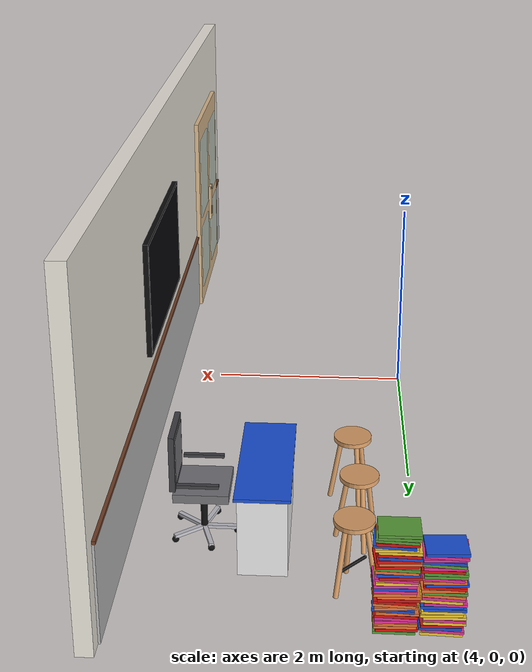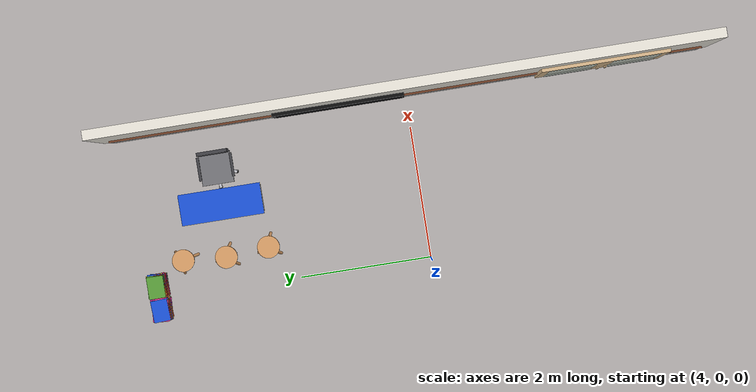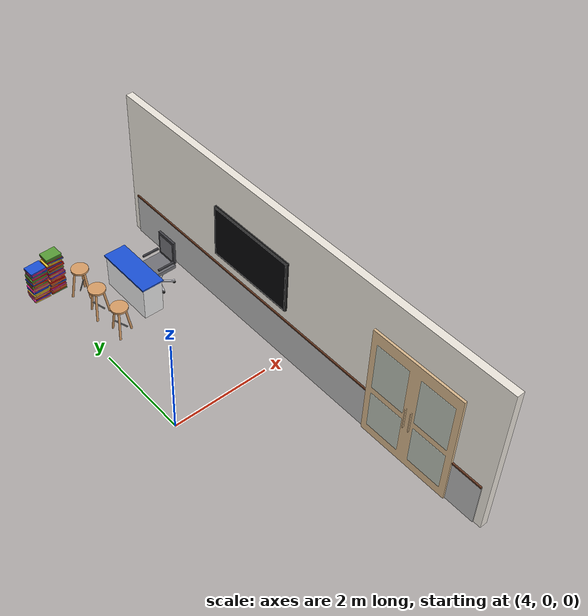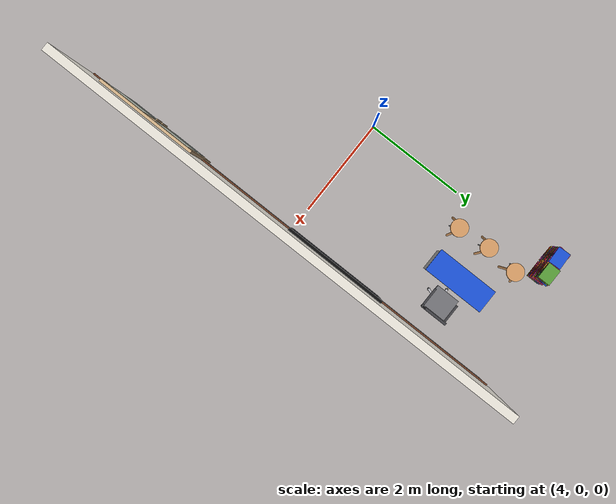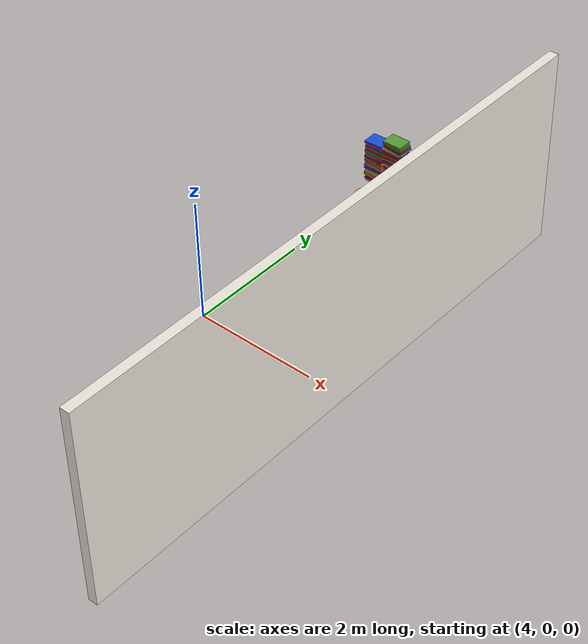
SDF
<sdf version="1.6">
 <world name="mahadev_lab">
  <include><uri>model://sun</uri></include>
  <model name="wall_front_tv">
   <static>true</static>
   <pose>6.5750 0.0000 0.0000 0.0000 0.0000 0.0000</pose>
   <link name="link">
    <visual name="v1">
     <pose>0.0000 0.0000 1.6000 0.0000 0.0000 0.0000</pose>
     <geometry><box><size>0.15 9.3 3.2</size></box></geometry>
     <material>
      <ambient>0.93 0.91 0.87 1</ambient>
      <diffuse>0.93 0.91 0.87 1</diffuse>
      <specular>0.1 0.1 0.1 1</specular>
     </material>
    </visual>
    <collision name="c1">
     <pose>0.0000 0.0000 1.6000 0.0000 0.0000 0.0000</pose>
     <geometry><box><size>0.15 9.3 3.2</size></box></geometry>
     <surface><friction><ode><mu>100</mu><mu2>100</mu2></ode></friction></surface>
    </collision>
    <visual name="v2">
     <pose>-0.0850 0.0000 0.4500 0.0000 0.0000 0.0000</pose>
     <geometry><box><size>0.02 9 0.9</size></box></geometry>
     <material>
      <script>
       <uri>model://mahadev_lab_media/materials/scripts</uri>
       <uri>model://mahadev_lab_media/materials/textures</uri>
       <name>Mahadev/wall_slats_15_1</name>
      </script>
     </material>
    </visual>
    <visual name="v3">
     <pose>-0.0850 0.0000 0.9150 0.0000 0.0000 0.0000</pose>
     <geometry><box><size>0.04 9 0.03</size></box></geometry>
     <material>
      <ambient>0.45 0.25 0.15 1</ambient>
      <diffuse>0.45 0.25 0.15 1</diffuse>
      <specular>0.1 0.1 0.1 1</specular>
     </material>
    </visual>
    <visual name="v4">
     <pose>-0.1150 1.0000 1.7500 0.0000 0.0000 0.0000</pose>
     <geometry><box><size>0.05 1.95 1.12</size></box></geometry>
     <material>
      <ambient>0.05 0.05 0.05 1</ambient>
      <diffuse>0.05 0.05 0.05 1</diffuse>
      <specular>0.1 0.1 0.1 1</specular>
     </material>
    </visual>
    <visual name="v5">
     <pose>-0.1410 1.0000 1.7500 0.0000 0.0000 0.0000</pose>
     <geometry><box><size>0.002 1.89 1.06</size></box></geometry>
     <material>
      <ambient>0.02 0.02 0.03 1</ambient>
      <diffuse>0.02 0.02 0.03 1</diffuse>
      <specular>0.1 0.1 0.1 1</specular>
     </material>
    </visual>
    <visual name="v6">
     <pose>-0.1050 -2.9500 1.2000 0.0000 0.0000 0.0000</pose>
     <geometry><box><size>0.05 1.9 2.4</size></box></geometry>
     <material>
      <ambient>0.85 0.72 0.55 1</ambient>
      <diffuse>0.85 0.72 0.55 1</diffuse>
      <specular>0.1 0.1 0.1 1</specular>
     </material>
    </visual>
    <visual name="v7">
     <pose>-0.1350 -3.4250 1.6500 0.0000 0.0000 0.0000</pose>
     <geometry><box><size>0.01 0.7 1</size></box></geometry>
     <material>
      <ambient>0.75 0.85 0.85 1</ambient>
      <diffuse>0.75 0.85 0.85 1</diffuse>
      <specular>0.1 0.1 0.1 1</specular>
     </material>
     <transparency>0.3</transparency>
    </visual>
    <visual name="v8">
     <pose>-0.1350 -3.4250 0.6000 0.0000 0.0000 0.0000</pose>
     <geometry><box><size>0.01 0.7 0.8</size></box></geometry>
     <material>
      <ambient>0.75 0.85 0.85 1</ambient>
      <diffuse>0.75 0.85 0.85 1</diffuse>
      <specular>0.1 0.1 0.1 1</specular>
     </material>
     <transparency>0.3</transparency>
    </visual>
    <visual name="v9">
     <pose>-0.1550 -3.0100 1.1000 0.0000 0.0000 0.0000</pose>
     <geometry><box><size>0.03 0.02 0.45</size></box></geometry>
     <material>
      <ambient>0.85 0.72 0.55 1</ambient>
      <diffuse>0.85 0.72 0.55 1</diffuse>
      <specular>0.1 0.1 0.1 1</specular>
     </material>
    </visual>
    <visual name="v10">
     <pose>-0.1350 -2.4750 1.6500 0.0000 0.0000 0.0000</pose>
     <geometry><box><size>0.01 0.7 1</size></box></geometry>
     <material>
      <ambient>0.75 0.85 0.85 1</ambient>
      <diffuse>0.75 0.85 0.85 1</diffuse>
      <specular>0.1 0.1 0.1 1</specular>
     </material>
     <transparency>0.3</transparency>
    </visual>
    <visual name="v11">
     <pose>-0.1350 -2.4750 0.6000 0.0000 0.0000 0.0000</pose>
     <geometry><box><size>0.01 0.7 0.8</size></box></geometry>
     <material>
      <ambient>0.75 0.85 0.85 1</ambient>
      <diffuse>0.75 0.85 0.85 1</diffuse>
      <specular>0.1 0.1 0.1 1</specular>
     </material>
     <transparency>0.3</transparency>
    </visual>
    <visual name="v12">
     <pose>-0.1550 -2.8900 1.1000 0.0000 0.0000 0.0000</pose>
     <geometry><box><size>0.03 0.02 0.45</size></box></geometry>
     <material>
      <ambient>0.85 0.72 0.55 1</ambient>
      <diffuse>0.85 0.72 0.55 1</diffuse>
      <specular>0.1 0.1 0.1 1</specular>
     </material>
    </visual>
   </link>
  </model>
  <model name="file_stacks">
   <static>true</static>
   <pose>4.0500 4.1500 0.0000 0.0000 0.0000 0.0000</pose>
   <link name="link">
    <visual name="v1">
     <pose>-0.1755 0.0000 0.0200 0.0000 0.0000 -0.0331</pose>
     <geometry><box><size>0.33 0.25 0.024</size></box></geometry>
     <material>
      <ambient>0.95 0.8 0.2 1</ambient>
      <diffuse>0.95 0.8 0.2 1</diffuse>
      <specular>0.1 0.1 0.1 1</specular>
     </material>
    </visual>
    <visual name="v2">
     <pose>-0.1889 0.0000 0.0450 0.0000 0.0000 -0.0652</pose>
     <geometry><box><size>0.33 0.25 0.024</size></box></geometry>
     <material>
      <ambient>0.9 0.2 0.6 1</ambient>
      <diffuse>0.9 0.2 0.6 1</diffuse>
      <specular>0.1 0.1 0.1 1</specular>
     </material>
    </visual>
    <visual name="v3">
     <pose>-0.1603 0.0000 0.0700 0.0000 0.0000 0.0145</pose>
     <geometry><box><size>0.33 0.25 0.024</size></box></geometry>
     <material>
      <ambient>0.1 0.32 0.85 1</ambient>
      <diffuse>0.1 0.32 0.85 1</diffuse>
      <specular>0.1 0.1 0.1 1</specular>
     </material>
    </visual>
    <visual name="v4">
     <pose>-0.1683 0.0000 0.0950 0.0000 0.0000 0.0658</pose>
     <geometry><box><size>0.33 0.25 0.024</size></box></geometry>
     <material>
      <ambient>0.85 0.08 0.06 1</ambient>
      <diffuse>0.85 0.08 0.06 1</diffuse>
      <specular>0.1 0.1 0.1 1</specular>
     </material>
    </visual>
    <visual name="v5">
     <pose>-0.1938 0.0000 0.1200 0.0000 0.0000 0.0016</pose>
     <geometry><box><size>0.33 0.25 0.024</size></box></geometry>
     <material>
      <ambient>0.95 0.8 0.2 1</ambient>
      <diffuse>0.95 0.8 0.2 1</diffuse>
      <specular>0.1 0.1 0.1 1</specular>
     </material>
    </visual>
    <visual name="v6">
     <pose>-0.1950 0.0000 0.1450 0.0000 0.0000 -0.0218</pose>
     <geometry><box><size>0.33 0.25 0.024</size></box></geometry>
     <material>
      <ambient>0.9 0.2 0.6 1</ambient>
      <diffuse>0.9 0.2 0.6 1</diffuse>
      <specular>0.1 0.1 0.1 1</specular>
     </material>
    </visual>
    <visual name="v7">
     <pose>-0.1895 0.0000 0.1700 0.0000 0.0000 0.0359</pose>
     <geometry><box><size>0.33 0.25 0.024</size></box></geometry>
     <material>
      <ambient>0.95 0.8 0.2 1</ambient>
      <diffuse>0.95 0.8 0.2 1</diffuse>
      <specular>0.1 0.1 0.1 1</specular>
     </material>
    </visual>
    <visual name="v8">
     <pose>-0.1629 0.0000 0.1950 0.0000 0.0000 0.0580</pose>
     <geometry><box><size>0.33 0.25 0.024</size></box></geometry>
     <material>
      <ambient>0.95 0.8 0.2 1</ambient>
      <diffuse>0.95 0.8 0.2 1</diffuse>
      <specular>0.1 0.1 0.1 1</specular>
     </material>
    </visual>
    <visual name="v9">
     <pose>-0.1730 0.0000 0.2200 0.0000 0.0000 0.0162</pose>
     <geometry><box><size>0.33 0.25 0.024</size></box></geometry>
     <material>
      <ambient>0.95 0.8 0.2 1</ambient>
      <diffuse>0.95 0.8 0.2 1</diffuse>
      <specular>0.1 0.1 0.1 1</specular>
     </material>
    </visual>
    <visual name="v10">
     <pose>-0.1939 0.0000 0.2450 0.0000 0.0000 -0.0007</pose>
     <geometry><box><size>0.33 0.25 0.024</size></box></geometry>
     <material>
      <ambient>0.1 0.32 0.85 1</ambient>
      <diffuse>0.1 0.32 0.85 1</diffuse>
      <specular>0.1 0.1 0.1 1</specular>
     </material>
    </visual>
    <visual name="v11">
     <pose>-0.1624 0.0000 0.2700 0.0000 0.0000 0.0422</pose>
     <geometry><box><size>0.33 0.25 0.024</size></box></geometry>
     <material>
      <ambient>0.1 0.32 0.85 1</ambient>
      <diffuse>0.1 0.32 0.85 1</diffuse>
      <specular>0.1 0.1 0.1 1</specular>
     </material>
    </visual>
    <visual name="v12">
     <pose>-0.1951 0.0000 0.2950 0.0000 0.0000 -0.0057</pose>
     <geometry><box><size>0.33 0.25 0.024</size></box></geometry>
     <material>
      <ambient>0.9 0.2 0.6 1</ambient>
      <diffuse>0.9 0.2 0.6 1</diffuse>
      <specular>0.1 0.1 0.1 1</specular>
     </material>
    </visual>
    <visual name="v13">
     <pose>-0.1638 0.0000 0.3200 0.0000 0.0000 -0.0467</pose>
     <geometry><box><size>0.33 0.25 0.024</size></box></geometry>
     <material>
      <ambient>0.95 0.8 0.2 1</ambient>
      <diffuse>0.95 0.8 0.2 1</diffuse>
      <specular>0.1 0.1 0.1 1</specular>
     </material>
    </visual>
    <visual name="v14">
     <pose>-0.1833 0.0000 0.3450 0.0000 0.0000 -0.0487</pose>
     <geometry><box><size>0.33 0.25 0.024</size></box></geometry>
     <material>
      <ambient>0.9 0.2 0.6 1</ambient>
      <diffuse>0.9 0.2 0.6 1</diffuse>
      <specular>0.1 0.1 0.1 1</specular>
     </material>
    </visual>
    <visual name="v15">
     <pose>-0.1845 0.0000 0.3700 0.0000 0.0000 -0.0636</pose>
     <geometry><box><size>0.33 0.25 0.024</size></box></geometry>
     <material>
      <ambient>0.93 0.45 0.2 1</ambient>
      <diffuse>0.93 0.45 0.2 1</diffuse>
      <specular>0.1 0.1 0.1 1</specular>
     </material>
    </visual>
    <visual name="v16">
     <pose>-0.1916 0.0000 0.3950 0.0000 0.0000 -0.0014</pose>
     <geometry><box><size>0.33 0.25 0.024</size></box></geometry>
     <material>
      <ambient>0.35 0.62 0.22 1</ambient>
      <diffuse>0.35 0.62 0.22 1</diffuse>
      <specular>0.1 0.1 0.1 1</specular>
     </material>
    </visual>
    <visual name="v17">
     <pose>-0.1644 0.0000 0.4200 0.0000 0.0000 0.0381</pose>
     <geometry><box><size>0.33 0.25 0.024</size></box></geometry>
     <material>
      <ambient>0.93 0.45 0.2 1</ambient>
      <diffuse>0.93 0.45 0.2 1</diffuse>
      <specular>0.1 0.1 0.1 1</specular>
     </material>
    </visual>
    <visual name="v18">
     <pose>-0.1908 0.0000 0.4450 0.0000 0.0000 -0.0533</pose>
     <geometry><box><size>0.33 0.25 0.024</size></box></geometry>
     <material>
      <ambient>0.85 0.08 0.06 1</ambient>
      <diffuse>0.85 0.08 0.06 1</diffuse>
      <specular>0.1 0.1 0.1 1</specular>
     </material>
    </visual>
    <visual name="v19">
     <pose>-0.1940 0.0000 0.4700 0.0000 0.0000 0.0545</pose>
     <geometry><box><size>0.33 0.25 0.024</size></box></geometry>
     <material>
      <ambient>0.1 0.32 0.85 1</ambient>
      <diffuse>0.1 0.32 0.85 1</diffuse>
      <specular>0.1 0.1 0.1 1</specular>
     </material>
    </visual>
    <visual name="v20">
     <pose>-0.1780 0.0000 0.4950 0.0000 0.0000 0.0392</pose>
     <geometry><box><size>0.33 0.25 0.024</size></box></geometry>
     <material>
      <ambient>0.93 0.45 0.2 1</ambient>
      <diffuse>0.93 0.45 0.2 1</diffuse>
      <specular>0.1 0.1 0.1 1</specular>
     </material>
    </visual>
    <visual name="v21">
     <pose>-0.1690 0.0000 0.5200 0.0000 0.0000 -0.0600</pose>
     <geometry><box><size>0.33 0.25 0.024</size></box></geometry>
     <material>
      <ambient>0.9 0.2 0.6 1</ambient>
      <diffuse>0.9 0.2 0.6 1</diffuse>
      <specular>0.1 0.1 0.1 1</specular>
     </material>
    </visual>
    <visual name="v22">
     <pose>-0.1851 0.0000 0.5450 0.0000 0.0000 0.0168</pose>
     <geometry><box><size>0.33 0.25 0.024</size></box></geometry>
     <material>
      <ambient>0.35 0.62 0.22 1</ambient>
      <diffuse>0.35 0.62 0.22 1</diffuse>
      <specular>0.1 0.1 0.1 1</specular>
     </material>
    </visual>
    <visual name="v23">
     <pose>-0.1905 0.0000 0.5700 0.0000 0.0000 -0.0181</pose>
     <geometry><box><size>0.33 0.25 0.024</size></box></geometry>
     <material>
      <ambient>0.35 0.62 0.22 1</ambient>
      <diffuse>0.35 0.62 0.22 1</diffuse>
      <specular>0.1 0.1 0.1 1</specular>
     </material>
    </visual>
    <visual name="v24">
     <pose>-0.1641 0.0000 0.5950 0.0000 0.0000 -0.0004</pose>
     <geometry><box><size>0.33 0.25 0.024</size></box></geometry>
     <material>
      <ambient>0.85 0.08 0.06 1</ambient>
      <diffuse>0.85 0.08 0.06 1</diffuse>
      <specular>0.1 0.1 0.1 1</specular>
     </material>
    </visual>
    <visual name="v25">
     <pose>-0.1755 0.0000 0.6200 0.0000 0.0000 0.0265</pose>
     <geometry><box><size>0.33 0.25 0.024</size></box></geometry>
     <material>
      <ambient>0.9 0.2 0.6 1</ambient>
      <diffuse>0.9 0.2 0.6 1</diffuse>
      <specular>0.1 0.1 0.1 1</specular>
     </material>
    </visual>
    <visual name="v26">
     <pose>-0.1785 0.0000 0.6450 0.0000 0.0000 -0.0717</pose>
     <geometry><box><size>0.33 0.25 0.024</size></box></geometry>
     <material>
      <ambient>0.35 0.62 0.22 1</ambient>
      <diffuse>0.35 0.62 0.22 1</diffuse>
      <specular>0.1 0.1 0.1 1</specular>
     </material>
    </visual>
    <visual name="v27">
     <pose>-0.1702 0.0000 0.6700 0.0000 0.0000 -0.0263</pose>
     <geometry><box><size>0.33 0.25 0.024</size></box></geometry>
     <material>
      <ambient>0.1 0.32 0.85 1</ambient>
      <diffuse>0.1 0.32 0.85 1</diffuse>
      <specular>0.1 0.1 0.1 1</specular>
     </material>
    </visual>
    <visual name="v28">
     <pose>-0.1675 0.0000 0.6950 0.0000 0.0000 0.0566</pose>
     <geometry><box><size>0.33 0.25 0.024</size></box></geometry>
     <material>
      <ambient>0.9 0.2 0.6 1</ambient>
      <diffuse>0.9 0.2 0.6 1</diffuse>
      <specular>0.1 0.1 0.1 1</specular>
     </material>
    </visual>
    <visual name="v29">
     <pose>-0.1934 0.0000 0.7200 0.0000 0.0000 -0.0611</pose>
     <geometry><box><size>0.33 0.25 0.024</size></box></geometry>
     <material>
      <ambient>0.9 0.2 0.6 1</ambient>
      <diffuse>0.9 0.2 0.6 1</diffuse>
      <specular>0.1 0.1 0.1 1</specular>
     </material>
    </visual>
    <visual name="v30">
     <pose>-0.1885 0.0000 0.7450 0.0000 0.0000 0.0464</pose>
     <geometry><box><size>0.33 0.25 0.024</size></box></geometry>
     <material>
      <ambient>0.1 0.32 0.85 1</ambient>
      <diffuse>0.1 0.32 0.85 1</diffuse>
      <specular>0.1 0.1 0.1 1</specular>
     </material>
    </visual>
    <visual name="v31">
     <pose>0.1890 0.0000 0.0200 0.0000 0.0000 -0.0054</pose>
     <geometry><box><size>0.33 0.25 0.024</size></box></geometry>
     <material>
      <ambient>0.35 0.62 0.22 1</ambient>
      <diffuse>0.35 0.62 0.22 1</diffuse>
      <specular>0.1 0.1 0.1 1</specular>
     </material>
    </visual>
    <visual name="v32">
     <pose>0.1751 0.0000 0.0450 0.0000 0.0000 0.0379</pose>
     <geometry><box><size>0.33 0.25 0.024</size></box></geometry>
     <material>
      <ambient>0.85 0.08 0.06 1</ambient>
      <diffuse>0.85 0.08 0.06 1</diffuse>
      <specular>0.1 0.1 0.1 1</specular>
     </material>
    </visual>
    <visual name="v33">
     <pose>0.1884 0.0000 0.0700 0.0000 0.0000 0.0187</pose>
     <geometry><box><size>0.33 0.25 0.024</size></box></geometry>
     <material>
      <ambient>0.93 0.45 0.2 1</ambient>
      <diffuse>0.93 0.45 0.2 1</diffuse>
      <specular>0.1 0.1 0.1 1</specular>
     </material>
    </visual>
    <visual name="v34">
     <pose>0.1790 0.0000 0.0950 0.0000 0.0000 0.0054</pose>
     <geometry><box><size>0.33 0.25 0.024</size></box></geometry>
     <material>
      <ambient>0.93 0.45 0.2 1</ambient>
      <diffuse>0.93 0.45 0.2 1</diffuse>
      <specular>0.1 0.1 0.1 1</specular>
     </material>
    </visual>
    <visual name="v35">
     <pose>0.1867 0.0000 0.1200 0.0000 0.0000 0.0639</pose>
     <geometry><box><size>0.33 0.25 0.024</size></box></geometry>
     <material>
      <ambient>0.9 0.2 0.6 1</ambient>
      <diffuse>0.9 0.2 0.6 1</diffuse>
      <specular>0.1 0.1 0.1 1</specular>
     </material>
    </visual>
    <visual name="v36">
     <pose>0.1758 0.0000 0.1450 0.0000 0.0000 -0.0344</pose>
     <geometry><box><size>0.33 0.25 0.024</size></box></geometry>
     <material>
      <ambient>0.9 0.2 0.6 1</ambient>
      <diffuse>0.9 0.2 0.6 1</diffuse>
      <specular>0.1 0.1 0.1 1</specular>
     </material>
    </visual>
    <visual name="v37">
     <pose>0.1769 0.0000 0.1700 0.0000 0.0000 -0.0180</pose>
     <geometry><box><size>0.33 0.25 0.024</size></box></geometry>
     <material>
      <ambient>0.85 0.08 0.06 1</ambient>
      <diffuse>0.85 0.08 0.06 1</diffuse>
      <specular>0.1 0.1 0.1 1</specular>
     </material>
    </visual>
    <visual name="v38">
     <pose>0.1688 0.0000 0.1950 0.0000 0.0000 -0.0014</pose>
     <geometry><box><size>0.33 0.25 0.024</size></box></geometry>
     <material>
      <ambient>0.93 0.45 0.2 1</ambient>
      <diffuse>0.93 0.45 0.2 1</diffuse>
      <specular>0.1 0.1 0.1 1</specular>
     </material>
    </visual>
    <visual name="v39">
     <pose>0.1953 0.0000 0.2200 0.0000 0.0000 -0.0716</pose>
     <geometry><box><size>0.33 0.25 0.024</size></box></geometry>
     <material>
      <ambient>0.1 0.32 0.85 1</ambient>
      <diffuse>0.1 0.32 0.85 1</diffuse>
      <specular>0.1 0.1 0.1 1</specular>
     </material>
    </visual>
    <visual name="v40">
     <pose>0.1904 0.0000 0.2450 0.0000 0.0000 0.0616</pose>
     <geometry><box><size>0.33 0.25 0.024</size></box></geometry>
     <material>
      <ambient>0.93 0.45 0.2 1</ambient>
      <diffuse>0.93 0.45 0.2 1</diffuse>
      <specular>0.1 0.1 0.1 1</specular>
     </material>
    </visual>
    <visual name="v41">
     <pose>0.1901 0.0000 0.2700 0.0000 0.0000 -0.0490</pose>
     <geometry><box><size>0.33 0.25 0.024</size></box></geometry>
     <material>
      <ambient>0.93 0.45 0.2 1</ambient>
      <diffuse>0.93 0.45 0.2 1</diffuse>
      <specular>0.1 0.1 0.1 1</specular>
     </material>
    </visual>
    <visual name="v42">
     <pose>0.1853 0.0000 0.2950 0.0000 0.0000 -0.0521</pose>
     <geometry><box><size>0.33 0.25 0.024</size></box></geometry>
     <material>
      <ambient>0.85 0.08 0.06 1</ambient>
      <diffuse>0.85 0.08 0.06 1</diffuse>
      <specular>0.1 0.1 0.1 1</specular>
     </material>
    </visual>
    <visual name="v43">
     <pose>0.1655 0.0000 0.3200 0.0000 0.0000 0.0234</pose>
     <geometry><box><size>0.33 0.25 0.024</size></box></geometry>
     <material>
      <ambient>0.85 0.08 0.06 1</ambient>
      <diffuse>0.85 0.08 0.06 1</diffuse>
      <specular>0.1 0.1 0.1 1</specular>
     </material>
    </visual>
    <visual name="v44">
     <pose>0.1653 0.0000 0.3450 0.0000 0.0000 0.0217</pose>
     <geometry><box><size>0.33 0.25 0.024</size></box></geometry>
     <material>
      <ambient>0.93 0.45 0.2 1</ambient>
      <diffuse>0.93 0.45 0.2 1</diffuse>
      <specular>0.1 0.1 0.1 1</specular>
     </material>
    </visual>
    <visual name="v45">
     <pose>0.1995 0.0000 0.3700 0.0000 0.0000 0.0547</pose>
     <geometry><box><size>0.33 0.25 0.024</size></box></geometry>
     <material>
      <ambient>0.93 0.45 0.2 1</ambient>
      <diffuse>0.93 0.45 0.2 1</diffuse>
      <specular>0.1 0.1 0.1 1</specular>
     </material>
    </visual>
    <visual name="v46">
     <pose>0.1909 0.0000 0.3950 0.0000 0.0000 0.0052</pose>
     <geometry><box><size>0.33 0.25 0.024</size></box></geometry>
     <material>
      <ambient>0.9 0.2 0.6 1</ambient>
      <diffuse>0.9 0.2 0.6 1</diffuse>
      <specular>0.1 0.1 0.1 1</specular>
     </material>
    </visual>
    <visual name="v47">
     <pose>0.1994 0.0000 0.4200 0.0000 0.0000 0.0362</pose>
     <geometry><box><size>0.33 0.25 0.024</size></box></geometry>
     <material>
      <ambient>0.1 0.32 0.85 1</ambient>
      <diffuse>0.1 0.32 0.85 1</diffuse>
      <specular>0.1 0.1 0.1 1</specular>
     </material>
    </visual>
    <visual name="v48">
     <pose>0.1988 0.0000 0.4450 0.0000 0.0000 0.0365</pose>
     <geometry><box><size>0.33 0.25 0.024</size></box></geometry>
     <material>
      <ambient>0.9 0.2 0.6 1</ambient>
      <diffuse>0.9 0.2 0.6 1</diffuse>
      <specular>0.1 0.1 0.1 1</specular>
     </material>
    </visual>
    <visual name="v49">
     <pose>0.1836 0.0000 0.4700 0.0000 0.0000 0.0341</pose>
     <geometry><box><size>0.33 0.25 0.024</size></box></geometry>
     <material>
      <ambient>0.95 0.8 0.2 1</ambient>
      <diffuse>0.95 0.8 0.2 1</diffuse>
      <specular>0.1 0.1 0.1 1</specular>
     </material>
    </visual>
    <visual name="v50">
     <pose>0.1785 0.0000 0.4950 0.0000 0.0000 -0.0626</pose>
     <geometry><box><size>0.33 0.25 0.024</size></box></geometry>
     <material>
      <ambient>0.9 0.2 0.6 1</ambient>
      <diffuse>0.9 0.2 0.6 1</diffuse>
      <specular>0.1 0.1 0.1 1</specular>
     </material>
    </visual>
    <visual name="v51">
     <pose>0.1604 0.0000 0.5200 0.0000 0.0000 0.0442</pose>
     <geometry><box><size>0.33 0.25 0.024</size></box></geometry>
     <material>
      <ambient>0.85 0.08 0.06 1</ambient>
      <diffuse>0.85 0.08 0.06 1</diffuse>
      <specular>0.1 0.1 0.1 1</specular>
     </material>
    </visual>
    <visual name="v52">
     <pose>0.1752 0.0000 0.5450 0.0000 0.0000 0.0212</pose>
     <geometry><box><size>0.33 0.25 0.024</size></box></geometry>
     <material>
      <ambient>0.1 0.32 0.85 1</ambient>
      <diffuse>0.1 0.32 0.85 1</diffuse>
      <specular>0.1 0.1 0.1 1</specular>
     </material>
    </visual>
    <visual name="v53">
     <pose>0.1805 0.0000 0.5700 0.0000 0.0000 -0.0277</pose>
     <geometry><box><size>0.33 0.25 0.024</size></box></geometry>
     <material>
      <ambient>0.93 0.45 0.2 1</ambient>
      <diffuse>0.93 0.45 0.2 1</diffuse>
      <specular>0.1 0.1 0.1 1</specular>
     </material>
    </visual>
    <visual name="v54">
     <pose>0.1720 0.0000 0.5950 0.0000 0.0000 -0.0301</pose>
     <geometry><box><size>0.33 0.25 0.024</size></box></geometry>
     <material>
      <ambient>0.35 0.62 0.22 1</ambient>
      <diffuse>0.35 0.62 0.22 1</diffuse>
      <specular>0.1 0.1 0.1 1</specular>
     </material>
    </visual>
    <visual name="v55">
     <pose>0.1941 0.0000 0.6200 0.0000 0.0000 0.0770</pose>
     <geometry><box><size>0.33 0.25 0.024</size></box></geometry>
     <material>
      <ambient>0.85 0.08 0.06 1</ambient>
      <diffuse>0.85 0.08 0.06 1</diffuse>
      <specular>0.1 0.1 0.1 1</specular>
     </material>
    </visual>
    <visual name="v56">
     <pose>0.1662 0.0000 0.6450 0.0000 0.0000 0.0538</pose>
     <geometry><box><size>0.33 0.25 0.024</size></box></geometry>
     <material>
      <ambient>0.93 0.45 0.2 1</ambient>
      <diffuse>0.93 0.45 0.2 1</diffuse>
      <specular>0.1 0.1 0.1 1</specular>
     </material>
    </visual>
    <visual name="v57">
     <pose>0.1807 0.0000 0.6700 0.0000 0.0000 0.0472</pose>
     <geometry><box><size>0.33 0.25 0.024</size></box></geometry>
     <material>
      <ambient>0.85 0.08 0.06 1</ambient>
      <diffuse>0.85 0.08 0.06 1</diffuse>
      <specular>0.1 0.1 0.1 1</specular>
     </material>
    </visual>
    <visual name="v58">
     <pose>0.1602 0.0000 0.6950 0.0000 0.0000 -0.0133</pose>
     <geometry><box><size>0.33 0.25 0.024</size></box></geometry>
     <material>
      <ambient>0.1 0.32 0.85 1</ambient>
      <diffuse>0.1 0.32 0.85 1</diffuse>
      <specular>0.1 0.1 0.1 1</specular>
     </material>
    </visual>
    <visual name="v59">
     <pose>0.1656 0.0000 0.7200 0.0000 0.0000 -0.0308</pose>
     <geometry><box><size>0.33 0.25 0.024</size></box></geometry>
     <material>
      <ambient>0.85 0.08 0.06 1</ambient>
      <diffuse>0.85 0.08 0.06 1</diffuse>
      <specular>0.1 0.1 0.1 1</specular>
     </material>
    </visual>
    <visual name="v60">
     <pose>0.1623 0.0000 0.7450 0.0000 0.0000 -0.0101</pose>
     <geometry><box><size>0.33 0.25 0.024</size></box></geometry>
     <material>
      <ambient>0.95 0.8 0.2 1</ambient>
      <diffuse>0.95 0.8 0.2 1</diffuse>
      <specular>0.1 0.1 0.1 1</specular>
     </material>
    </visual>
    <visual name="v61">
     <pose>0.1976 0.0000 0.7700 0.0000 0.0000 0.0556</pose>
     <geometry><box><size>0.33 0.25 0.024</size></box></geometry>
     <material>
      <ambient>0.95 0.8 0.2 1</ambient>
      <diffuse>0.95 0.8 0.2 1</diffuse>
      <specular>0.1 0.1 0.1 1</specular>
     </material>
    </visual>
    <visual name="v62">
     <pose>0.1998 0.0000 0.7950 0.0000 0.0000 -0.0762</pose>
     <geometry><box><size>0.33 0.25 0.024</size></box></geometry>
     <material>
      <ambient>0.1 0.32 0.85 1</ambient>
      <diffuse>0.1 0.32 0.85 1</diffuse>
      <specular>0.1 0.1 0.1 1</specular>
     </material>
    </visual>
    <visual name="v63">
     <pose>0.1852 0.0000 0.8200 0.0000 0.0000 -0.0091</pose>
     <geometry><box><size>0.33 0.25 0.024</size></box></geometry>
     <material>
      <ambient>0.85 0.08 0.06 1</ambient>
      <diffuse>0.85 0.08 0.06 1</diffuse>
      <specular>0.1 0.1 0.1 1</specular>
     </material>
    </visual>
    <visual name="v64">
     <pose>0.1812 0.0000 0.8450 0.0000 0.0000 -0.0682</pose>
     <geometry><box><size>0.33 0.25 0.024</size></box></geometry>
     <material>
      <ambient>0.35 0.62 0.22 1</ambient>
      <diffuse>0.35 0.62 0.22 1</diffuse>
      <specular>0.1 0.1 0.1 1</specular>
     </material>
    </visual>
    <visual name="v65">
     <pose>0.1696 0.0000 0.8700 0.0000 0.0000 -0.0168</pose>
     <geometry><box><size>0.33 0.25 0.024</size></box></geometry>
     <material>
      <ambient>0.35 0.62 0.22 1</ambient>
      <diffuse>0.35 0.62 0.22 1</diffuse>
      <specular>0.1 0.1 0.1 1</specular>
     </material>
    </visual>
    <visual name="v66">
     <pose>0.1718 0.0000 0.8950 0.0000 0.0000 0.0048</pose>
     <geometry><box><size>0.33 0.25 0.024</size></box></geometry>
     <material>
      <ambient>0.35 0.62 0.22 1</ambient>
      <diffuse>0.35 0.62 0.22 1</diffuse>
      <specular>0.1 0.1 0.1 1</specular>
     </material>
    </visual>
    <collision name="c67">
     <pose>0.0000 0.0000 0.4500 0 0 0</pose>
     <geometry><box><size>0.75 0.3 0.9</size></box></geometry>
    </collision>
   </link>
  </model>
  <model name="blue_desk">
   <static>true</static>
   <pose>5.3000 3.0000 0.0000 0.0000 0.0000 0.0000</pose>
   <link name="link">
    <visual name="v1">
     <pose>0.0000 0.0000 0.3600 0.0000 0.0000 0.0000</pose>
     <geometry><box><size>0.42 1.2 0.72</size></box></geometry>
     <material>
      <ambient>0.92 0.92 0.92 1</ambient>
      <diffuse>0.92 0.92 0.92 1</diffuse>
      <specular>0.1 0.1 0.1 1</specular>
     </material>
    </visual>
    <collision name="c1">
     <pose>0.0000 0.0000 0.3600 0.0000 0.0000 0.0000</pose>
     <geometry><box><size>0.42 1.2 0.72</size></box></geometry>
     <surface><friction><ode><mu>100</mu><mu2>100</mu2></ode></friction></surface>
    </collision>
    <visual name="v2">
     <pose>0.0000 0.0000 0.7350 0.0000 0.0000 0.0000</pose>
     <geometry><box><size>0.47 1.25 0.03</size></box></geometry>
     <material>
      <ambient>0.1 0.32 0.85 1</ambient>
      <diffuse>0.1 0.32 0.85 1</diffuse>
      <specular>0.1 0.1 0.1 1</specular>
     </material>
    </visual>
   </link>
  </model>
  <model name="blue_desk_chair">
   <static>true</static>
   <pose>5.8500 3.0000 0.0000 0.0000 0.0000 3.1416</pose>
   <link name="link">
    <visual name="v1">
     <pose>0.1500 0.0000 0.0600 0.0000 0.0000 0.0000</pose>
     <geometry><box><size>0.3 0.04 0.03</size></box></geometry>
     <material>
      <ambient>0.75 0.75 0.78 1</ambient>
      <diffuse>0.75 0.75 0.78 1</diffuse>
      <specular>0.1 0.1 0.1 1</specular>
     </material>
    </visual>
    <visual name="v2">
     <pose>0.2900 0.0000 0.0300 0.0000 0.0000 0.0000</pose>
     <geometry><sphere><radius>0.03</radius></sphere></geometry>
     <material>
      <ambient>0.05 0.05 0.05 1</ambient>
      <diffuse>0.05 0.05 0.05 1</diffuse>
      <specular>0.1 0.1 0.1 1</specular>
     </material>
    </visual>
    <visual name="v3">
     <pose>0.0464 0.1427 0.0600 0.0000 0.0000 1.2566</pose>
     <geometry><box><size>0.3 0.04 0.03</size></box></geometry>
     <material>
      <ambient>0.75 0.75 0.78 1</ambient>
      <diffuse>0.75 0.75 0.78 1</diffuse>
      <specular>0.1 0.1 0.1 1</specular>
     </material>
    </visual>
    <visual name="v4">
     <pose>0.0896 0.2758 0.0300 0.0000 0.0000 0.0000</pose>
     <geometry><sphere><radius>0.03</radius></sphere></geometry>
     <material>
      <ambient>0.05 0.05 0.05 1</ambient>
      <diffuse>0.05 0.05 0.05 1</diffuse>
      <specular>0.1 0.1 0.1 1</specular>
     </material>
    </visual>
    <visual name="v5">
     <pose>-0.1214 0.0882 0.0600 0.0000 0.0000 2.5133</pose>
     <geometry><box><size>0.3 0.04 0.03</size></box></geometry>
     <material>
      <ambient>0.75 0.75 0.78 1</ambient>
      <diffuse>0.75 0.75 0.78 1</diffuse>
      <specular>0.1 0.1 0.1 1</specular>
     </material>
    </visual>
    <visual name="v6">
     <pose>-0.2346 0.1705 0.0300 0.0000 0.0000 0.0000</pose>
     <geometry><sphere><radius>0.03</radius></sphere></geometry>
     <material>
      <ambient>0.05 0.05 0.05 1</ambient>
      <diffuse>0.05 0.05 0.05 1</diffuse>
      <specular>0.1 0.1 0.1 1</specular>
     </material>
    </visual>
    <visual name="v7">
     <pose>-0.1214 -0.0882 0.0600 0.0000 0.0000 3.7699</pose>
     <geometry><box><size>0.3 0.04 0.03</size></box></geometry>
     <material>
      <ambient>0.75 0.75 0.78 1</ambient>
      <diffuse>0.75 0.75 0.78 1</diffuse>
      <specular>0.1 0.1 0.1 1</specular>
     </material>
    </visual>
    <visual name="v8">
     <pose>-0.2346 -0.1705 0.0300 0.0000 0.0000 0.0000</pose>
     <geometry><sphere><radius>0.03</radius></sphere></geometry>
     <material>
      <ambient>0.05 0.05 0.05 1</ambient>
      <diffuse>0.05 0.05 0.05 1</diffuse>
      <specular>0.1 0.1 0.1 1</specular>
     </material>
    </visual>
    <visual name="v9">
     <pose>0.0464 -0.1427 0.0600 0.0000 0.0000 5.0265</pose>
     <geometry><box><size>0.3 0.04 0.03</size></box></geometry>
     <material>
      <ambient>0.75 0.75 0.78 1</ambient>
      <diffuse>0.75 0.75 0.78 1</diffuse>
      <specular>0.1 0.1 0.1 1</specular>
     </material>
    </visual>
    <visual name="v10">
     <pose>0.0896 -0.2758 0.0300 0.0000 0.0000 0.0000</pose>
     <geometry><sphere><radius>0.03</radius></sphere></geometry>
     <material>
      <ambient>0.05 0.05 0.05 1</ambient>
      <diffuse>0.05 0.05 0.05 1</diffuse>
      <specular>0.1 0.1 0.1 1</specular>
     </material>
    </visual>
    <visual name="v11">
     <pose>0.0000 0.0000 0.2700 0.0000 0.0000 0.0000</pose>
     <geometry><cylinder><radius>0.03</radius><length>0.4</length></cylinder></geometry>
     <material>
      <ambient>0.05 0.05 0.05 1</ambient>
      <diffuse>0.05 0.05 0.05 1</diffuse>
      <specular>0.1 0.1 0.1 1</specular>
     </material>
    </visual>
    <visual name="v12">
     <pose>0.0000 0.0000 0.4800 0.0000 0.0000 0.0000</pose>
     <geometry><box><size>0.48 0.48 0.08</size></box></geometry>
     <material>
      <ambient>0.45 0.45 0.47 1</ambient>
      <diffuse>0.45 0.45 0.47 1</diffuse>
      <specular>0.1 0.1 0.1 1</specular>
     </material>
    </visual>
    <visual name="v13">
     <pose>-0.2400 0.0000 0.8000 0.0000 0.0000 0.0000</pose>
     <geometry><box><size>0.05 0.46 0.52</size></box></geometry>
     <material>
      <ambient>0.25 0.25 0.27 1</ambient>
      <diffuse>0.25 0.25 0.27 1</diffuse>
      <specular>0.1 0.1 0.1 1</specular>
     </material>
    </visual>
    <visual name="v14">
     <pose>-0.2150 0.0000 0.8000 0.0000 0.0000 0.0000</pose>
     <geometry><box><size>0.01 0.38 0.42</size></box></geometry>
     <material>
      <ambient>0.45 0.45 0.47 1</ambient>
      <diffuse>0.45 0.45 0.47 1</diffuse>
      <specular>0.1 0.1 0.1 1</specular>
     </material>
    </visual>
    <visual name="v15">
     <pose>-0.0200 -0.2500 0.6200 0.0000 0.0000 0.0000</pose>
     <geometry><box><size>0.36 0.04 0.03</size></box></geometry>
     <material>
      <ambient>0.25 0.25 0.27 1</ambient>
      <diffuse>0.25 0.25 0.27 1</diffuse>
      <specular>0.1 0.1 0.1 1</specular>
     </material>
    </visual>
    <visual name="v16">
     <pose>-0.0200 0.2500 0.6200 0.0000 0.0000 0.0000</pose>
     <geometry><box><size>0.36 0.04 0.03</size></box></geometry>
     <material>
      <ambient>0.25 0.25 0.27 1</ambient>
      <diffuse>0.25 0.25 0.27 1</diffuse>
      <specular>0.1 0.1 0.1 1</specular>
     </material>
    </visual>
    <collision name="c17">
     <pose>0.0000 0.0000 0.2750 0 0 0</pose>
     <geometry><cylinder><radius>0.3</radius><length>0.55</length></cylinder></geometry>
    </collision>
   </link>
  </model>
  <model name="stool_corner_0">
   <static>true</static>
   <pose>4.5500 2.4000 0.0000 0.0000 0.0000 1.9111</pose>
   <link name="link">
    <visual name="v1">
     <pose>0.0000 0.0000 0.6400 0.0000 0.0000 0.0000</pose>
     <geometry><cylinder><radius>0.17</radius><length>0.04</length></cylinder></geometry>
     <material>
      <ambient>0.85 0.62 0.4 1</ambient>
      <diffuse>0.85 0.62 0.4 1</diffuse>
      <specular>0.1 0.1 0.1 1</specular>
     </material>
    </visual>
    <visual name="v2">
     <pose>0.1500 0.0000 0.3100 0.0000 -0.1599 0.0000</pose>
     <geometry><cylinder><radius>0.022</radius><length>0.63</length></cylinder></geometry>
     <material>
      <ambient>0.85 0.62 0.4 1</ambient>
      <diffuse>0.85 0.62 0.4 1</diffuse>
      <specular>0.1 0.1 0.1 1</specular>
     </material>
    </visual>
    <visual name="v3">
     <pose>-0.0750 0.1299 0.3100 0.0000 -0.1599 2.0944</pose>
     <geometry><cylinder><radius>0.022</radius><length>0.63</length></cylinder></geometry>
     <material>
      <ambient>0.85 0.62 0.4 1</ambient>
      <diffuse>0.85 0.62 0.4 1</diffuse>
      <specular>0.1 0.1 0.1 1</specular>
     </material>
    </visual>
    <visual name="v4">
     <pose>-0.0750 -0.1299 0.3100 0.0000 -0.1599 4.1888</pose>
     <geometry><cylinder><radius>0.022</radius><length>0.63</length></cylinder></geometry>
     <material>
      <ambient>0.85 0.62 0.4 1</ambient>
      <diffuse>0.85 0.62 0.4 1</diffuse>
      <specular>0.1 0.1 0.1 1</specular>
     </material>
    </visual>
    <visual name="v5">
     <pose>0.0000 0.0000 0.2200 0.0000 0.0000 0.0000</pose>
     <geometry><box><size>0.3 0.02 0.02</size></box></geometry>
     <material>
      <ambient>0.05 0.05 0.05 1</ambient>
      <diffuse>0.05 0.05 0.05 1</diffuse>
      <specular>0.1 0.1 0.1 1</specular>
     </material>
    </visual>
    <collision name="c6">
     <pose>0.0000 0.0000 0.3300 0 0 0</pose>
     <geometry><cylinder><radius>0.2</radius><length>0.66</length></cylinder></geometry>
    </collision>
   </link>
  </model>
  <model name="stool_corner_1">
   <static>true</static>
   <pose>4.5000 3.0500 0.0000 0.0000 0.0000 1.8240</pose>
   <link name="link">
    <visual name="v1">
     <pose>0.0000 0.0000 0.6400 0.0000 0.0000 0.0000</pose>
     <geometry><cylinder><radius>0.17</radius><length>0.04</length></cylinder></geometry>
     <material>
      <ambient>0.85 0.62 0.4 1</ambient>
      <diffuse>0.85 0.62 0.4 1</diffuse>
      <specular>0.1 0.1 0.1 1</specular>
     </material>
    </visual>
    <visual name="v2">
     <pose>0.1500 0.0000 0.3100 0.0000 -0.1599 0.0000</pose>
     <geometry><cylinder><radius>0.022</radius><length>0.63</length></cylinder></geometry>
     <material>
      <ambient>0.85 0.62 0.4 1</ambient>
      <diffuse>0.85 0.62 0.4 1</diffuse>
      <specular>0.1 0.1 0.1 1</specular>
     </material>
    </visual>
    <visual name="v3">
     <pose>-0.0750 0.1299 0.3100 0.0000 -0.1599 2.0944</pose>
     <geometry><cylinder><radius>0.022</radius><length>0.63</length></cylinder></geometry>
     <material>
      <ambient>0.85 0.62 0.4 1</ambient>
      <diffuse>0.85 0.62 0.4 1</diffuse>
      <specular>0.1 0.1 0.1 1</specular>
     </material>
    </visual>
    <visual name="v4">
     <pose>-0.0750 -0.1299 0.3100 0.0000 -0.1599 4.1888</pose>
     <geometry><cylinder><radius>0.022</radius><length>0.63</length></cylinder></geometry>
     <material>
      <ambient>0.85 0.62 0.4 1</ambient>
      <diffuse>0.85 0.62 0.4 1</diffuse>
      <specular>0.1 0.1 0.1 1</specular>
     </material>
    </visual>
    <visual name="v5">
     <pose>0.0000 0.0000 0.2200 0.0000 0.0000 0.0000</pose>
     <geometry><box><size>0.3 0.02 0.02</size></box></geometry>
     <material>
      <ambient>0.05 0.05 0.05 1</ambient>
      <diffuse>0.05 0.05 0.05 1</diffuse>
      <specular>0.1 0.1 0.1 1</specular>
     </material>
    </visual>
    <collision name="c6">
     <pose>0.0000 0.0000 0.3300 0 0 0</pose>
     <geometry><cylinder><radius>0.2</radius><length>0.66</length></cylinder></geometry>
    </collision>
   </link>
  </model>
  <model name="stool_corner_2">
   <static>true</static>
   <pose>4.5500 3.7000 0.0000 0.0000 0.0000 0.7961</pose>
   <link name="link">
    <visual name="v1">
     <pose>0.0000 0.0000 0.6400 0.0000 0.0000 0.0000</pose>
     <geometry><cylinder><radius>0.17</radius><length>0.04</length></cylinder></geometry>
     <material>
      <ambient>0.85 0.62 0.4 1</ambient>
      <diffuse>0.85 0.62 0.4 1</diffuse>
      <specular>0.1 0.1 0.1 1</specular>
     </material>
    </visual>
    <visual name="v2">
     <pose>0.1500 0.0000 0.3100 0.0000 -0.1599 0.0000</pose>
     <geometry><cylinder><radius>0.022</radius><length>0.63</length></cylinder></geometry>
     <material>
      <ambient>0.85 0.62 0.4 1</ambient>
      <diffuse>0.85 0.62 0.4 1</diffuse>
      <specular>0.1 0.1 0.1 1</specular>
     </material>
    </visual>
    <visual name="v3">
     <pose>-0.0750 0.1299 0.3100 0.0000 -0.1599 2.0944</pose>
     <geometry><cylinder><radius>0.022</radius><length>0.63</length></cylinder></geometry>
     <material>
      <ambient>0.85 0.62 0.4 1</ambient>
      <diffuse>0.85 0.62 0.4 1</diffuse>
      <specular>0.1 0.1 0.1 1</specular>
     </material>
    </visual>
    <visual name="v4">
     <pose>-0.0750 -0.1299 0.3100 0.0000 -0.1599 4.1888</pose>
     <geometry><cylinder><radius>0.022</radius><length>0.63</length></cylinder></geometry>
     <material>
      <ambient>0.85 0.62 0.4 1</ambient>
      <diffuse>0.85 0.62 0.4 1</diffuse>
      <specular>0.1 0.1 0.1 1</specular>
     </material>
    </visual>
    <visual name="v5">
     <pose>0.0000 0.0000 0.2200 0.0000 0.0000 0.0000</pose>
     <geometry><box><size>0.3 0.02 0.02</size></box></geometry>
     <material>
      <ambient>0.05 0.05 0.05 1</ambient>
      <diffuse>0.05 0.05 0.05 1</diffuse>
      <specular>0.1 0.1 0.1 1</specular>
     </material>
    </visual>
    <collision name="c6">
     <pose>0.0000 0.0000 0.3300 0 0 0</pose>
     <geometry><cylinder><radius>0.2</radius><length>0.66</length></cylinder></geometry>
    </collision>
   </link>
  </model>
 </world>
</sdf>
